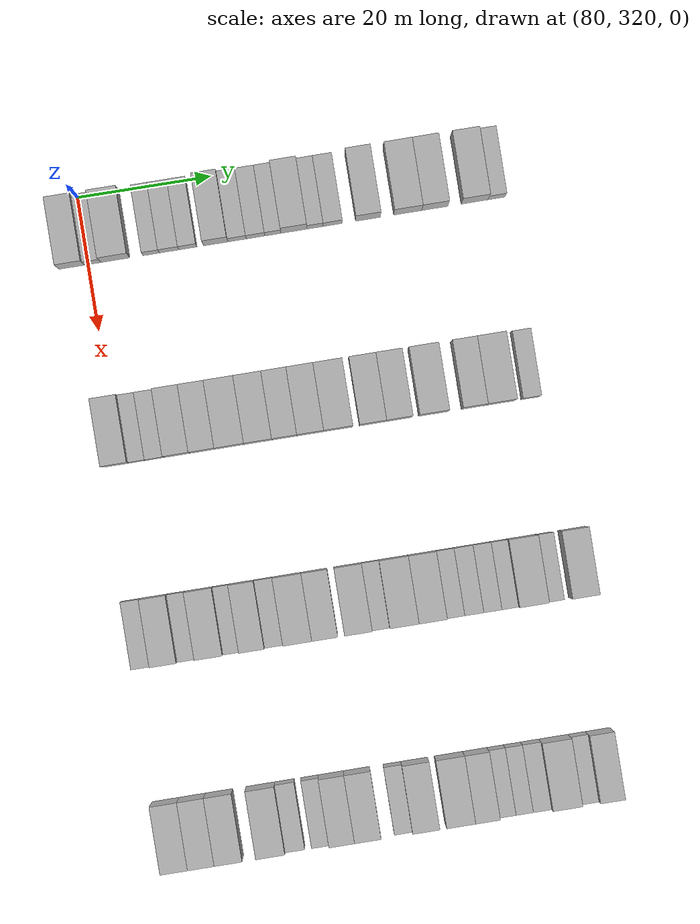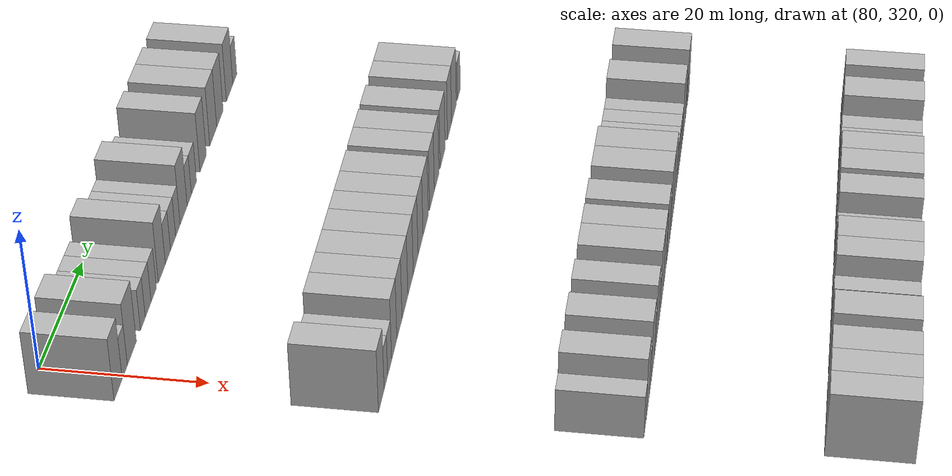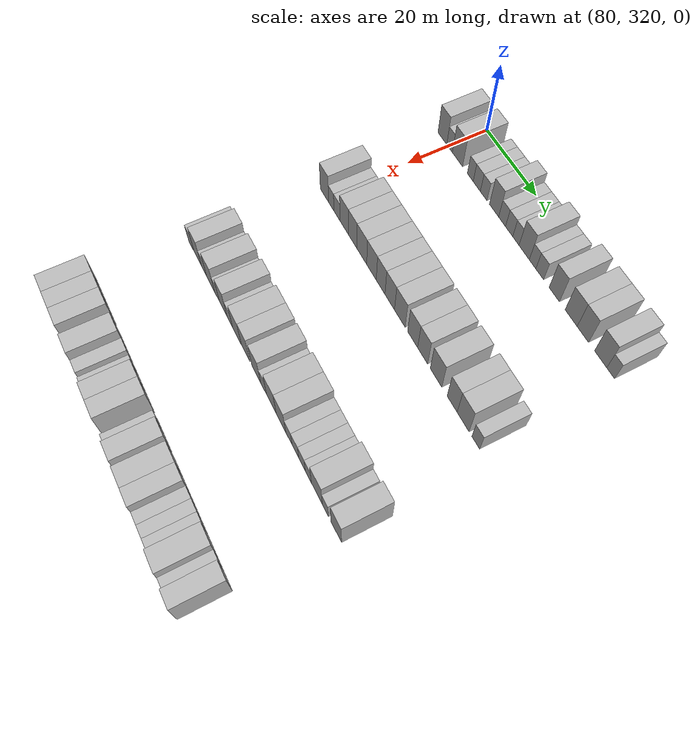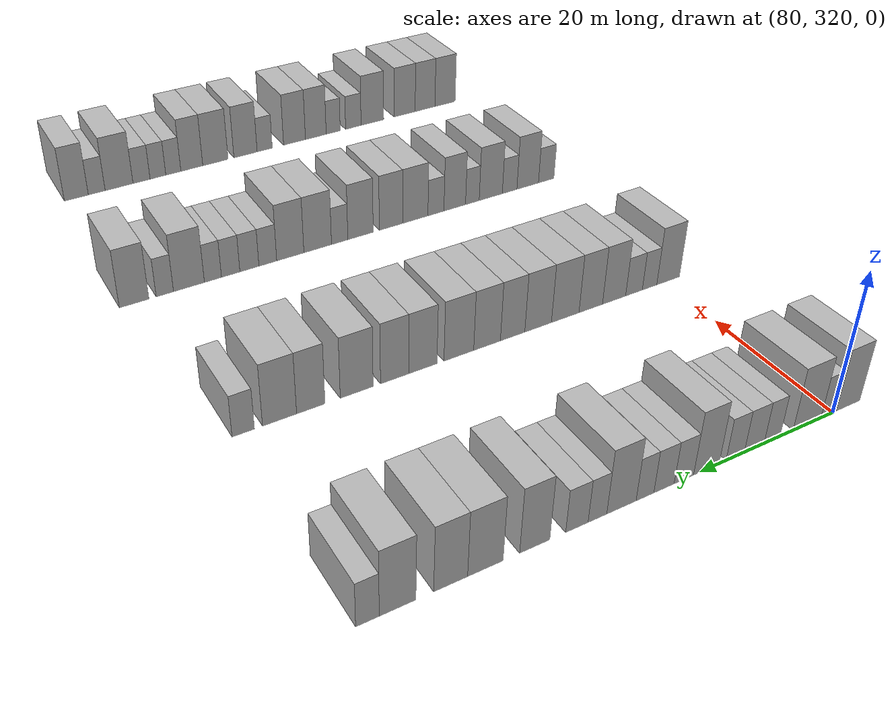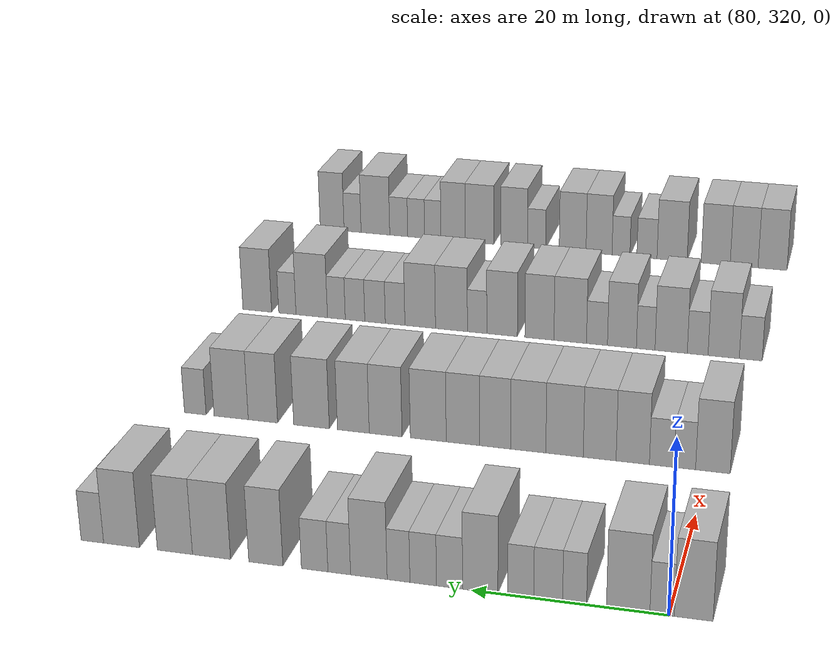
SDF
<sdf version="1.6">
 <world name="default">
  <model name="building_656">
   <static>1</static>
   <pose>85.0000 317.5295 0 0.000000 0.000000 0.000000</pose>
   <link name="link">
    <pose>0 0 4.50 0 0 0</pose>
    <collision name="collision"><geometry><box><size>10.0000 3.8385 9.0000</size></box></geometry></collision>
    <visual name="visual">
     <cast_shadows>0</cast_shadows>
     <geometry><box><size>10.0000 3.8385 9.0000</size></box></geometry>
     <material>
      <script>
       <uri>model://HANNAS_wall/materials/scripts</uri>
       <uri>model://HANNAS_wall/materials/textures</uri>
       <name>vrc/HANNAS_wall</name>
      </script>
     </material>
    </visual>
   </link>
  </model>
  <model name="building_657">
   <static>1</static>
   <pose>85.0000 320.6643 0 0.000000 0.000000 0.000000</pose>
   <link name="link">
    <pose>0 0 3.00 0 0 0</pose>
    <collision name="collision"><geometry><box><size>10.0000 2.4312 6.0000</size></box></geometry></collision>
    <visual name="visual">
     <cast_shadows>0</cast_shadows>
     <geometry><box><size>10.0000 2.4312 6.0000</size></box></geometry>
     <material>
      <script>
       <uri>model://HANNAS_wall/materials/scripts</uri>
       <uri>model://HANNAS_wall/materials/textures</uri>
       <name>vrc/HANNAS_wall</name>
      </script>
     </material>
    </visual>
   </link>
  </model>
  <model name="building_658">
   <static>1</static>
   <pose>85.0000 324.0612 0 0.000000 0.000000 0.000000</pose>
   <link name="link">
    <pose>0 0 4.50 0 0 0</pose>
    <collision name="collision"><geometry><box><size>10.0000 4.3625 9.0000</size></box></geometry></collision>
    <visual name="visual">
     <cast_shadows>0</cast_shadows>
     <geometry><box><size>10.0000 4.3625 9.0000</size></box></geometry>
     <material>
      <script>
       <uri>model://HANNAS_wall/materials/scripts</uri>
       <uri>model://HANNAS_wall/materials/textures</uri>
       <name>vrc/HANNAS_wall</name>
      </script>
     </material>
    </visual>
   </link>
  </model>
  <model name="building_659">
   <static>1</static>
   <pose>85.0000 329.4591 0 0.000000 0.000000 0.000000</pose>
   <link name="link">
    <pose>0 0 3.00 0 0 0</pose>
    <collision name="collision"><geometry><box><size>10.0000 2.4334 6.0000</size></box></geometry></collision>
    <visual name="visual">
     <cast_shadows>0</cast_shadows>
     <geometry><box><size>10.0000 2.4334 6.0000</size></box></geometry>
     <material>
      <script>
       <uri>model://HANNAS_wall/materials/scripts</uri>
       <uri>model://HANNAS_wall/materials/textures</uri>
       <name>vrc/HANNAS_wall</name>
      </script>
     </material>
    </visual>
   </link>
  </model>
  <model name="building_660">
   <static>1</static>
   <pose>85.0000 332.1476 0 0.000000 0.000000 0.000000</pose>
   <link name="link">
    <pose>0 0 3.00 0 0 0</pose>
    <collision name="collision"><geometry><box><size>10.0000 2.9434 6.0000</size></box></geometry></collision>
    <visual name="visual">
     <cast_shadows>0</cast_shadows>
     <geometry><box><size>10.0000 2.9434 6.0000</size></box></geometry>
     <material>
      <script>
       <uri>model://HANNAS_wall/materials/scripts</uri>
       <uri>model://HANNAS_wall/materials/textures</uri>
       <name>vrc/HANNAS_wall</name>
      </script>
     </material>
    </visual>
   </link>
  </model>
  <model name="building_661">
   <static>1</static>
   <pose>85.0000 334.9630 0 0.000000 0.000000 0.000000</pose>
   <link name="link">
    <pose>0 0 3.00 0 0 0</pose>
    <collision name="collision"><geometry><box><size>10.0000 2.6874 6.0000</size></box></geometry></collision>
    <visual name="visual">
     <cast_shadows>0</cast_shadows>
     <geometry><box><size>10.0000 2.6874 6.0000</size></box></geometry>
     <material>
      <script>
       <uri>model://HANNAS_wall/materials/scripts</uri>
       <uri>model://HANNAS_wall/materials/textures</uri>
       <name>vrc/HANNAS_wall</name>
      </script>
     </material>
    </visual>
   </link>
  </model>
  <model name="building_662">
   <static>1</static>
   <pose>85.0000 339.1381 0 0.000000 0.000000 0.000000</pose>
   <link name="link">
    <pose>0 0 4.50 0 0 0</pose>
    <collision name="collision"><geometry><box><size>10.0000 3.6628 9.0000</size></box></geometry></collision>
    <visual name="visual">
     <cast_shadows>0</cast_shadows>
     <geometry><box><size>10.0000 3.6628 9.0000</size></box></geometry>
     <material>
      <script>
       <uri>model://HANNAS_wall/materials/scripts</uri>
       <uri>model://HANNAS_wall/materials/textures</uri>
       <name>vrc/HANNAS_wall</name>
      </script>
     </material>
    </visual>
   </link>
  </model>
  <model name="building_663">
   <static>1</static>
   <pose>85.0000 342.3312 0 0.000000 0.000000 0.000000</pose>
   <link name="link">
    <pose>0 0 3.00 0 0 0</pose>
    <collision name="collision"><geometry><box><size>10.0000 2.7235 6.0000</size></box></geometry></collision>
    <visual name="visual">
     <cast_shadows>0</cast_shadows>
     <geometry><box><size>10.0000 2.7235 6.0000</size></box></geometry>
     <material>
      <script>
       <uri>model://HANNAS_wall/materials/scripts</uri>
       <uri>model://HANNAS_wall/materials/textures</uri>
       <name>vrc/HANNAS_wall</name>
      </script>
     </material>
    </visual>
   </link>
  </model>
  <model name="building_664">
   <static>1</static>
   <pose>85.0000 345.0891 0 0.000000 0.000000 0.000000</pose>
   <link name="link">
    <pose>0 0 3.00 0 0 0</pose>
    <collision name="collision"><geometry><box><size>10.0000 2.7923 6.0000</size></box></geometry></collision>
    <visual name="visual">
     <cast_shadows>0</cast_shadows>
     <geometry><box><size>10.0000 2.7923 6.0000</size></box></geometry>
     <material>
      <script>
       <uri>model://HANNAS_wall/materials/scripts</uri>
       <uri>model://HANNAS_wall/materials/textures</uri>
       <name>vrc/HANNAS_wall</name>
      </script>
     </material>
    </visual>
   </link>
  </model>
  <model name="building_665">
   <static>1</static>
   <pose>85.0000 347.6860 0 0.000000 0.000000 0.000000</pose>
   <link name="link">
    <pose>0 0 3.00 0 0 0</pose>
    <collision name="collision"><geometry><box><size>10.0000 2.4015 6.0000</size></box></geometry></collision>
    <visual name="visual">
     <cast_shadows>0</cast_shadows>
     <geometry><box><size>10.0000 2.4015 6.0000</size></box></geometry>
     <material>
      <script>
       <uri>model://HANNAS_wall/materials/scripts</uri>
       <uri>model://HANNAS_wall/materials/textures</uri>
       <name>vrc/HANNAS_wall</name>
      </script>
     </material>
    </visual>
   </link>
  </model>
  <model name="building_666">
   <static>1</static>
   <pose>85.0000 350.8327 0 0.000000 0.000000 0.000000</pose>
   <link name="link">
    <pose>0 0 4.50 0 0 0</pose>
    <collision name="collision"><geometry><box><size>10.0000 3.8920 9.0000</size></box></geometry></collision>
    <visual name="visual">
     <cast_shadows>0</cast_shadows>
     <geometry><box><size>10.0000 3.8920 9.0000</size></box></geometry>
     <material>
      <script>
       <uri>model://HANNAS_wall/materials/scripts</uri>
       <uri>model://HANNAS_wall/materials/textures</uri>
       <name>vrc/HANNAS_wall</name>
      </script>
     </material>
    </visual>
   </link>
  </model>
  <model name="building_667">
   <static>1</static>
   <pose>85.0000 353.9919 0 0.000000 0.000000 0.000000</pose>
   <link name="link">
    <pose>0 0 3.00 0 0 0</pose>
    <collision name="collision"><geometry><box><size>10.0000 2.4262 6.0000</size></box></geometry></collision>
    <visual name="visual">
     <cast_shadows>0</cast_shadows>
     <geometry><box><size>10.0000 2.4262 6.0000</size></box></geometry>
     <material>
      <script>
       <uri>model://HANNAS_wall/materials/scripts</uri>
       <uri>model://HANNAS_wall/materials/textures</uri>
       <name>vrc/HANNAS_wall</name>
      </script>
     </material>
    </visual>
   </link>
  </model>
  <model name="building_668">
   <static>1</static>
   <pose>85.0000 356.6333 0 0.000000 0.000000 0.000000</pose>
   <link name="link">
    <pose>0 0 3.00 0 0 0</pose>
    <collision name="collision"><geometry><box><size>10.0000 2.8567 6.0000</size></box></geometry></collision>
    <visual name="visual">
     <cast_shadows>0</cast_shadows>
     <geometry><box><size>10.0000 2.8567 6.0000</size></box></geometry>
     <material>
      <script>
       <uri>model://HANNAS_wall/materials/scripts</uri>
       <uri>model://HANNAS_wall/materials/textures</uri>
       <name>vrc/HANNAS_wall</name>
      </script>
     </material>
    </visual>
   </link>
  </model>
  <model name="building_669">
   <static>1</static>
   <pose>85.0000 361.9188 0 0.000000 0.000000 0.000000</pose>
   <link name="link">
    <pose>0 0 4.50 0 0 0</pose>
    <collision name="collision"><geometry><box><size>10.0000 3.7143 9.0000</size></box></geometry></collision>
    <visual name="visual">
     <cast_shadows>0</cast_shadows>
     <geometry><box><size>10.0000 3.7143 9.0000</size></box></geometry>
     <material>
      <script>
       <uri>model://HANNAS_wall/materials/scripts</uri>
       <uri>model://HANNAS_wall/materials/textures</uri>
       <name>vrc/HANNAS_wall</name>
      </script>
     </material>
    </visual>
   </link>
  </model>
  <model name="building_670">
   <static>1</static>
   <pose>85.0000 367.8730 0 0.000000 0.000000 0.000000</pose>
   <link name="link">
    <pose>0 0 4.50 0 0 0</pose>
    <collision name="collision"><geometry><box><size>10.0000 4.1942 9.0000</size></box></geometry></collision>
    <visual name="visual">
     <cast_shadows>0</cast_shadows>
     <geometry><box><size>10.0000 4.1942 9.0000</size></box></geometry>
     <material>
      <script>
       <uri>model://HANNAS_wall/materials/scripts</uri>
       <uri>model://HANNAS_wall/materials/textures</uri>
       <name>vrc/HANNAS_wall</name>
      </script>
     </material>
    </visual>
   </link>
  </model>
  <model name="building_671">
   <static>1</static>
   <pose>85.0000 371.9230 0 0.000000 0.000000 0.000000</pose>
   <link name="link">
    <pose>0 0 4.50 0 0 0</pose>
    <collision name="collision"><geometry><box><size>10.0000 3.9056 9.0000</size></box></geometry></collision>
    <visual name="visual">
     <cast_shadows>0</cast_shadows>
     <geometry><box><size>10.0000 3.9056 9.0000</size></box></geometry>
     <material>
      <script>
       <uri>model://HANNAS_wall/materials/scripts</uri>
       <uri>model://HANNAS_wall/materials/textures</uri>
       <name>vrc/HANNAS_wall</name>
      </script>
     </material>
    </visual>
   </link>
  </model>
  <model name="building_672">
   <static>1</static>
   <pose>85.0000 377.8960 0 0.000000 0.000000 0.000000</pose>
   <link name="link">
    <pose>0 0 4.50 0 0 0</pose>
    <collision name="collision"><geometry><box><size>10.0000 4.0404 9.0000</size></box></geometry></collision>
    <visual name="visual">
     <cast_shadows>0</cast_shadows>
     <geometry><box><size>10.0000 4.0404 9.0000</size></box></geometry>
     <material>
      <script>
       <uri>model://HANNAS_wall/materials/scripts</uri>
       <uri>model://HANNAS_wall/materials/textures</uri>
       <name>vrc/HANNAS_wall</name>
      </script>
     </material>
    </visual>
   </link>
  </model>
  <model name="building_673">
   <static>1</static>
   <pose>85.0000 381.1887 0 0.000000 0.000000 0.000000</pose>
   <link name="link">
    <pose>0 0 3.00 0 0 0</pose>
    <collision name="collision"><geometry><box><size>10.0000 2.5450 6.0000</size></box></geometry></collision>
    <visual name="visual">
     <cast_shadows>0</cast_shadows>
     <geometry><box><size>10.0000 2.5450 6.0000</size></box></geometry>
     <material>
      <script>
       <uri>model://HANNAS_wall/materials/scripts</uri>
       <uri>model://HANNAS_wall/materials/textures</uri>
       <name>vrc/HANNAS_wall</name>
      </script>
     </material>
    </visual>
   </link>
  </model>
  <model name="building_889">
   <static>1</static>
   <pose>115.0000 319.4348 0 0.000000 0.000000 0.000000</pose>
   <link name="link">
    <pose>0 0 4.50 0 0 0</pose>
    <collision name="collision"><geometry><box><size>10.0000 3.9116 9.0000</size></box></geometry></collision>
    <visual name="visual">
     <cast_shadows>0</cast_shadows>
     <geometry><box><size>10.0000 3.9116 9.0000</size></box></geometry>
     <material>
      <script>
       <uri>model://HANNAS_wall/materials/scripts</uri>
       <uri>model://HANNAS_wall/materials/textures</uri>
       <name>vrc/HANNAS_wall</name>
      </script>
     </material>
    </visual>
   </link>
  </model>
  <model name="building_890">
   <static>1</static>
   <pose>115.0000 322.6186 0 0.000000 0.000000 0.000000</pose>
   <link name="link">
    <pose>0 0 3.00 0 0 0</pose>
    <collision name="collision"><geometry><box><size>10.0000 2.4560 6.0000</size></box></geometry></collision>
    <visual name="visual">
     <cast_shadows>0</cast_shadows>
     <geometry><box><size>10.0000 2.4560 6.0000</size></box></geometry>
     <material>
      <script>
       <uri>model://HANNAS_wall/materials/scripts</uri>
       <uri>model://HANNAS_wall/materials/textures</uri>
       <name>vrc/HANNAS_wall</name>
      </script>
     </material>
    </visual>
   </link>
  </model>
  <model name="building_891">
   <static>1</static>
   <pose>115.0000 325.2488 0 0.000000 0.000000 0.000000</pose>
   <link name="link">
    <pose>0 0 3.00 0 0 0</pose>
    <collision name="collision"><geometry><box><size>10.0000 2.8042 6.0000</size></box></geometry></collision>
    <visual name="visual">
     <cast_shadows>0</cast_shadows>
     <geometry><box><size>10.0000 2.8042 6.0000</size></box></geometry>
     <material>
      <script>
       <uri>model://HANNAS_wall/materials/scripts</uri>
       <uri>model://HANNAS_wall/materials/textures</uri>
       <name>vrc/HANNAS_wall</name>
      </script>
     </material>
    </visual>
   </link>
  </model>
  <model name="building_892">
   <static>1</static>
   <pose>115.0000 328.5654 0 0.000000 0.000000 0.000000</pose>
   <link name="link">
    <pose>0 0 4.50 0 0 0</pose>
    <collision name="collision"><geometry><box><size>10.0000 3.8291 9.0000</size></box></geometry></collision>
    <visual name="visual">
     <cast_shadows>0</cast_shadows>
     <geometry><box><size>10.0000 3.8291 9.0000</size></box></geometry>
     <material>
      <script>
       <uri>model://HANNAS_wall/materials/scripts</uri>
       <uri>model://HANNAS_wall/materials/textures</uri>
       <name>vrc/HANNAS_wall</name>
      </script>
     </material>
    </visual>
   </link>
  </model>
  <model name="building_893">
   <static>1</static>
   <pose>115.0000 332.3822 0 0.000000 0.000000 0.000000</pose>
   <link name="link">
    <pose>0 0 4.50 0 0 0</pose>
    <collision name="collision"><geometry><box><size>10.0000 3.8044 9.0000</size></box></geometry></collision>
    <visual name="visual">
     <cast_shadows>0</cast_shadows>
     <geometry><box><size>10.0000 3.8044 9.0000</size></box></geometry>
     <material>
      <script>
       <uri>model://HANNAS_wall/materials/scripts</uri>
       <uri>model://HANNAS_wall/materials/textures</uri>
       <name>vrc/HANNAS_wall</name>
      </script>
     </material>
    </visual>
   </link>
  </model>
  <model name="building_894">
   <static>1</static>
   <pose>115.0000 336.4641 0 0.000000 0.000000 0.000000</pose>
   <link name="link">
    <pose>0 0 4.50 0 0 0</pose>
    <collision name="collision"><geometry><box><size>10.0000 4.3595 9.0000</size></box></geometry></collision>
    <visual name="visual">
     <cast_shadows>0</cast_shadows>
     <geometry><box><size>10.0000 4.3595 9.0000</size></box></geometry>
     <material>
      <script>
       <uri>model://HANNAS_wall/materials/scripts</uri>
       <uri>model://HANNAS_wall/materials/textures</uri>
       <name>vrc/HANNAS_wall</name>
      </script>
     </material>
    </visual>
   </link>
  </model>
  <model name="building_895">
   <static>1</static>
   <pose>115.0000 340.7091 0 0.000000 0.000000 0.000000</pose>
   <link name="link">
    <pose>0 0 4.50 0 0 0</pose>
    <collision name="collision"><geometry><box><size>10.0000 4.1305 9.0000</size></box></geometry></collision>
    <visual name="visual">
     <cast_shadows>0</cast_shadows>
     <geometry><box><size>10.0000 4.1305 9.0000</size></box></geometry>
     <material>
      <script>
       <uri>model://HANNAS_wall/materials/scripts</uri>
       <uri>model://HANNAS_wall/materials/textures</uri>
       <name>vrc/HANNAS_wall</name>
      </script>
     </material>
    </visual>
   </link>
  </model>
  <model name="building_896">
   <static>1</static>
   <pose>115.0000 344.6231 0 0.000000 0.000000 0.000000</pose>
   <link name="link">
    <pose>0 0 4.50 0 0 0</pose>
    <collision name="collision"><geometry><box><size>10.0000 3.6976 9.0000</size></box></geometry></collision>
    <visual name="visual">
     <cast_shadows>0</cast_shadows>
     <geometry><box><size>10.0000 3.6976 9.0000</size></box></geometry>
     <material>
      <script>
       <uri>model://HANNAS_wall/materials/scripts</uri>
       <uri>model://HANNAS_wall/materials/textures</uri>
       <name>vrc/HANNAS_wall</name>
      </script>
     </material>
    </visual>
   </link>
  </model>
  <model name="building_897">
   <static>1</static>
   <pose>115.0000 348.4558 0 0.000000 0.000000 0.000000</pose>
   <link name="link">
    <pose>0 0 4.50 0 0 0</pose>
    <collision name="collision"><geometry><box><size>10.0000 3.9677 9.0000</size></box></geometry></collision>
    <visual name="visual">
     <cast_shadows>0</cast_shadows>
     <geometry><box><size>10.0000 3.9677 9.0000</size></box></geometry>
     <material>
      <script>
       <uri>model://HANNAS_wall/materials/scripts</uri>
       <uri>model://HANNAS_wall/materials/textures</uri>
       <name>vrc/HANNAS_wall</name>
      </script>
     </material>
    </visual>
   </link>
  </model>
  <model name="building_898">
   <static>1</static>
   <pose>115.0000 352.5982 0 0.000000 0.000000 0.000000</pose>
   <link name="link">
    <pose>0 0 4.50 0 0 0</pose>
    <collision name="collision"><geometry><box><size>10.0000 4.3171 9.0000</size></box></geometry></collision>
    <visual name="visual">
     <cast_shadows>0</cast_shadows>
     <geometry><box><size>10.0000 4.3171 9.0000</size></box></geometry>
     <material>
      <script>
       <uri>model://HANNAS_wall/materials/scripts</uri>
       <uri>model://HANNAS_wall/materials/textures</uri>
       <name>vrc/HANNAS_wall</name>
      </script>
     </material>
    </visual>
   </link>
  </model>
  <model name="building_899">
   <static>1</static>
   <pose>115.0000 357.7504 0 0.000000 0.000000 0.000000</pose>
   <link name="link">
    <pose>0 0 4.50 0 0 0</pose>
    <collision name="collision"><geometry><box><size>10.0000 3.9874 9.0000</size></box></geometry></collision>
    <visual name="visual">
     <cast_shadows>0</cast_shadows>
     <geometry><box><size>10.0000 3.9874 9.0000</size></box></geometry>
     <material>
      <script>
       <uri>model://HANNAS_wall/materials/scripts</uri>
       <uri>model://HANNAS_wall/materials/textures</uri>
       <name>vrc/HANNAS_wall</name>
      </script>
     </material>
    </visual>
   </link>
  </model>
  <model name="building_900">
   <static>1</static>
   <pose>115.0000 361.6867 0 0.000000 0.000000 0.000000</pose>
   <link name="link">
    <pose>0 0 4.50 0 0 0</pose>
    <collision name="collision"><geometry><box><size>10.0000 3.8852 9.0000</size></box></geometry></collision>
    <visual name="visual">
     <cast_shadows>0</cast_shadows>
     <geometry><box><size>10.0000 3.8852 9.0000</size></box></geometry>
     <material>
      <script>
       <uri>model://HANNAS_wall/materials/scripts</uri>
       <uri>model://HANNAS_wall/materials/textures</uri>
       <name>vrc/HANNAS_wall</name>
      </script>
     </material>
    </visual>
   </link>
  </model>
  <model name="building_901">
   <static>1</static>
   <pose>115.0000 366.8284 0 0.000000 0.000000 0.000000</pose>
   <link name="link">
    <pose>0 0 4.50 0 0 0</pose>
    <collision name="collision"><geometry><box><size>10.0000 4.3984 9.0000</size></box></geometry></collision>
    <visual name="visual">
     <cast_shadows>0</cast_shadows>
     <geometry><box><size>10.0000 4.3984 9.0000</size></box></geometry>
     <material>
      <script>
       <uri>model://HANNAS_wall/materials/scripts</uri>
       <uri>model://HANNAS_wall/materials/textures</uri>
       <name>vrc/HANNAS_wall</name>
      </script>
     </material>
    </visual>
   </link>
  </model>
  <model name="building_902">
   <static>1</static>
   <pose>115.0000 372.8615 0 0.000000 0.000000 0.000000</pose>
   <link name="link">
    <pose>0 0 4.50 0 0 0</pose>
    <collision name="collision"><geometry><box><size>10.0000 3.6678 9.0000</size></box></geometry></collision>
    <visual name="visual">
     <cast_shadows>0</cast_shadows>
     <geometry><box><size>10.0000 3.6678 9.0000</size></box></geometry>
     <material>
      <script>
       <uri>model://HANNAS_wall/materials/scripts</uri>
       <uri>model://HANNAS_wall/materials/textures</uri>
       <name>vrc/HANNAS_wall</name>
      </script>
     </material>
    </visual>
   </link>
  </model>
  <model name="building_903">
   <static>1</static>
   <pose>115.0000 376.8481 0 0.000000 0.000000 0.000000</pose>
   <link name="link">
    <pose>0 0 4.50 0 0 0</pose>
    <collision name="collision"><geometry><box><size>10.0000 4.3054 9.0000</size></box></geometry></collision>
    <visual name="visual">
     <cast_shadows>0</cast_shadows>
     <geometry><box><size>10.0000 4.3054 9.0000</size></box></geometry>
     <material>
      <script>
       <uri>model://HANNAS_wall/materials/scripts</uri>
       <uri>model://HANNAS_wall/materials/textures</uri>
       <name>vrc/HANNAS_wall</name>
      </script>
     </material>
    </visual>
   </link>
  </model>
  <model name="building_904">
   <static>1</static>
   <pose>115.0000 381.3746 0 0.000000 0.000000 0.000000</pose>
   <link name="link">
    <pose>0 0 3.00 0 0 0</pose>
    <collision name="collision"><geometry><box><size>10.0000 2.7475 6.0000</size></box></geometry></collision>
    <visual name="visual">
     <cast_shadows>0</cast_shadows>
     <geometry><box><size>10.0000 2.7475 6.0000</size></box></geometry>
     <material>
      <script>
       <uri>model://HANNAS_wall/materials/scripts</uri>
       <uri>model://HANNAS_wall/materials/textures</uri>
       <name>vrc/HANNAS_wall</name>
      </script>
     </material>
    </visual>
   </link>
  </model>
  <model name="building_1105">
   <static>1</static>
   <pose>145.0000 318.4346 0 0.000000 0.000000 0.000000</pose>
   <link name="link">
    <pose>0 0 3.00 0 0 0</pose>
    <collision name="collision"><geometry><box><size>10.0000 2.8904 6.0000</size></box></geometry></collision>
    <visual name="visual">
     <cast_shadows>0</cast_shadows>
     <geometry><box><size>10.0000 2.8904 6.0000</size></box></geometry>
     <material>
      <script>
       <uri>model://HANNAS_wall/materials/scripts</uri>
       <uri>model://HANNAS_wall/materials/textures</uri>
       <name>vrc/HANNAS_wall</name>
      </script>
     </material>
    </visual>
   </link>
  </model>
  <model name="building_1106">
   <static>1</static>
   <pose>145.0000 321.8645 0 0.000000 0.000000 0.000000</pose>
   <link name="link">
    <pose>0 0 4.50 0 0 0</pose>
    <collision name="collision"><geometry><box><size>10.0000 3.9692 9.0000</size></box></geometry></collision>
    <visual name="visual">
     <cast_shadows>0</cast_shadows>
     <geometry><box><size>10.0000 3.9692 9.0000</size></box></geometry>
     <material>
      <script>
       <uri>model://HANNAS_wall/materials/scripts</uri>
       <uri>model://HANNAS_wall/materials/textures</uri>
       <name>vrc/HANNAS_wall</name>
      </script>
     </material>
    </visual>
   </link>
  </model>
  <model name="building_1107">
   <static>1</static>
   <pose>145.0000 325.1760 0 0.000000 0.000000 0.000000</pose>
   <link name="link">
    <pose>0 0 3.00 0 0 0</pose>
    <collision name="collision"><geometry><box><size>10.0000 2.6539 6.0000</size></box></geometry></collision>
    <visual name="visual">
     <cast_shadows>0</cast_shadows>
     <geometry><box><size>10.0000 2.6539 6.0000</size></box></geometry>
     <material>
      <script>
       <uri>model://HANNAS_wall/materials/scripts</uri>
       <uri>model://HANNAS_wall/materials/textures</uri>
       <name>vrc/HANNAS_wall</name>
      </script>
     </material>
    </visual>
   </link>
  </model>
  <model name="building_1108">
   <static>1</static>
   <pose>145.0000 328.5757 0 0.000000 0.000000 0.000000</pose>
   <link name="link">
    <pose>0 0 4.50 0 0 0</pose>
    <collision name="collision"><geometry><box><size>10.0000 4.1455 9.0000</size></box></geometry></collision>
    <visual name="visual">
     <cast_shadows>0</cast_shadows>
     <geometry><box><size>10.0000 4.1455 9.0000</size></box></geometry>
     <material>
      <script>
       <uri>model://HANNAS_wall/materials/scripts</uri>
       <uri>model://HANNAS_wall/materials/textures</uri>
       <name>vrc/HANNAS_wall</name>
      </script>
     </material>
    </visual>
   </link>
  </model>
  <model name="building_1109">
   <static>1</static>
   <pose>145.0000 331.8518 0 0.000000 0.000000 0.000000</pose>
   <link name="link">
    <pose>0 0 3.00 0 0 0</pose>
    <collision name="collision"><geometry><box><size>10.0000 2.4067 6.0000</size></box></geometry></collision>
    <visual name="visual">
     <cast_shadows>0</cast_shadows>
     <geometry><box><size>10.0000 2.4067 6.0000</size></box></geometry>
     <material>
      <script>
       <uri>model://HANNAS_wall/materials/scripts</uri>
       <uri>model://HANNAS_wall/materials/textures</uri>
       <name>vrc/HANNAS_wall</name>
      </script>
     </material>
    </visual>
   </link>
  </model>
  <model name="building_1110">
   <static>1</static>
   <pose>145.0000 334.9343 0 0.000000 0.000000 0.000000</pose>
   <link name="link">
    <pose>0 0 4.50 0 0 0</pose>
    <collision name="collision"><geometry><box><size>10.0000 3.7583 9.0000</size></box></geometry></collision>
    <visual name="visual">
     <cast_shadows>0</cast_shadows>
     <geometry><box><size>10.0000 3.7583 9.0000</size></box></geometry>
     <material>
      <script>
       <uri>model://HANNAS_wall/materials/scripts</uri>
       <uri>model://HANNAS_wall/materials/textures</uri>
       <name>vrc/HANNAS_wall</name>
      </script>
     </material>
    </visual>
   </link>
  </model>
  <model name="building_1111">
   <static>1</static>
   <pose>145.0000 338.1828 0 0.000000 0.000000 0.000000</pose>
   <link name="link">
    <pose>0 0 3.00 0 0 0</pose>
    <collision name="collision"><geometry><box><size>10.0000 2.7387 6.0000</size></box></geometry></collision>
    <visual name="visual">
     <cast_shadows>0</cast_shadows>
     <geometry><box><size>10.0000 2.7387 6.0000</size></box></geometry>
     <material>
      <script>
       <uri>model://HANNAS_wall/materials/scripts</uri>
       <uri>model://HANNAS_wall/materials/textures</uri>
       <name>vrc/HANNAS_wall</name>
      </script>
     </material>
    </visual>
   </link>
  </model>
  <model name="building_1112">
   <static>1</static>
   <pose>145.0000 341.6887 0 0.000000 0.000000 0.000000</pose>
   <link name="link">
    <pose>0 0 4.50 0 0 0</pose>
    <collision name="collision"><geometry><box><size>10.0000 4.2732 9.0000</size></box></geometry></collision>
    <visual name="visual">
     <cast_shadows>0</cast_shadows>
     <geometry><box><size>10.0000 4.2732 9.0000</size></box></geometry>
     <material>
      <script>
       <uri>model://HANNAS_wall/materials/scripts</uri>
       <uri>model://HANNAS_wall/materials/textures</uri>
       <name>vrc/HANNAS_wall</name>
      </script>
     </material>
    </visual>
   </link>
  </model>
  <model name="building_1113">
   <static>1</static>
   <pose>145.0000 345.7477 0 0.000000 0.000000 0.000000</pose>
   <link name="link">
    <pose>0 0 4.50 0 0 0</pose>
    <collision name="collision"><geometry><box><size>10.0000 3.8448 9.0000</size></box></geometry></collision>
    <visual name="visual">
     <cast_shadows>0</cast_shadows>
     <geometry><box><size>10.0000 3.8448 9.0000</size></box></geometry>
     <material>
      <script>
       <uri>model://HANNAS_wall/materials/scripts</uri>
       <uri>model://HANNAS_wall/materials/textures</uri>
       <name>vrc/HANNAS_wall</name>
      </script>
     </material>
    </visual>
   </link>
  </model>
  <model name="building_1114">
   <static>1</static>
   <pose>145.0000 350.7122 0 0.000000 0.000000 0.000000</pose>
   <link name="link">
    <pose>0 0 4.50 0 0 0</pose>
    <collision name="collision"><geometry><box><size>10.0000 4.0841 9.0000</size></box></geometry></collision>
    <visual name="visual">
     <cast_shadows>0</cast_shadows>
     <geometry><box><size>10.0000 4.0841 9.0000</size></box></geometry>
     <material>
      <script>
       <uri>model://HANNAS_wall/materials/scripts</uri>
       <uri>model://HANNAS_wall/materials/textures</uri>
       <name>vrc/HANNAS_wall</name>
      </script>
     </material>
    </visual>
   </link>
  </model>
  <model name="building_1115">
   <static>1</static>
   <pose>145.0000 354.0508 0 0.000000 0.000000 0.000000</pose>
   <link name="link">
    <pose>0 0 3.00 0 0 0</pose>
    <collision name="collision"><geometry><box><size>10.0000 2.5931 6.0000</size></box></geometry></collision>
    <visual name="visual">
     <cast_shadows>0</cast_shadows>
     <geometry><box><size>10.0000 2.5931 6.0000</size></box></geometry>
     <material>
      <script>
       <uri>model://HANNAS_wall/materials/scripts</uri>
       <uri>model://HANNAS_wall/materials/textures</uri>
       <name>vrc/HANNAS_wall</name>
      </script>
     </material>
    </visual>
   </link>
  </model>
  <model name="building_1116">
   <static>1</static>
   <pose>145.0000 357.5026 0 0.000000 0.000000 0.000000</pose>
   <link name="link">
    <pose>0 0 4.50 0 0 0</pose>
    <collision name="collision"><geometry><box><size>10.0000 4.3105 9.0000</size></box></geometry></collision>
    <visual name="visual">
     <cast_shadows>0</cast_shadows>
     <geometry><box><size>10.0000 4.3105 9.0000</size></box></geometry>
     <material>
      <script>
       <uri>model://HANNAS_wall/materials/scripts</uri>
       <uri>model://HANNAS_wall/materials/textures</uri>
       <name>vrc/HANNAS_wall</name>
      </script>
     </material>
    </visual>
   </link>
  </model>
  <model name="building_1117">
   <static>1</static>
   <pose>145.0000 361.7345 0 0.000000 0.000000 0.000000</pose>
   <link name="link">
    <pose>0 0 4.50 0 0 0</pose>
    <collision name="collision"><geometry><box><size>10.0000 4.1534 9.0000</size></box></geometry></collision>
    <visual name="visual">
     <cast_shadows>0</cast_shadows>
     <geometry><box><size>10.0000 4.1534 9.0000</size></box></geometry>
     <material>
      <script>
       <uri>model://HANNAS_wall/materials/scripts</uri>
       <uri>model://HANNAS_wall/materials/textures</uri>
       <name>vrc/HANNAS_wall</name>
      </script>
     </material>
    </visual>
   </link>
  </model>
  <model name="building_1118">
   <static>1</static>
   <pose>145.0000 365.1513 0 0.000000 0.000000 0.000000</pose>
   <link name="link">
    <pose>0 0 3.00 0 0 0</pose>
    <collision name="collision"><geometry><box><size>10.0000 2.6801 6.0000</size></box></geometry></collision>
    <visual name="visual">
     <cast_shadows>0</cast_shadows>
     <geometry><box><size>10.0000 2.6801 6.0000</size></box></geometry>
     <material>
      <script>
       <uri>model://HANNAS_wall/materials/scripts</uri>
       <uri>model://HANNAS_wall/materials/textures</uri>
       <name>vrc/HANNAS_wall</name>
      </script>
     </material>
    </visual>
   </link>
  </model>
  <model name="building_1119">
   <static>1</static>
   <pose>145.0000 367.9007 0 0.000000 0.000000 0.000000</pose>
   <link name="link">
    <pose>0 0 3.00 0 0 0</pose>
    <collision name="collision"><geometry><box><size>10.0000 2.8189 6.0000</size></box></geometry></collision>
    <visual name="visual">
     <cast_shadows>0</cast_shadows>
     <geometry><box><size>10.0000 2.8189 6.0000</size></box></geometry>
     <material>
      <script>
       <uri>model://HANNAS_wall/materials/scripts</uri>
       <uri>model://HANNAS_wall/materials/textures</uri>
       <name>vrc/HANNAS_wall</name>
      </script>
     </material>
    </visual>
   </link>
  </model>
  <model name="building_1120">
   <static>1</static>
   <pose>145.0000 370.6539 0 0.000000 0.000000 0.000000</pose>
   <link name="link">
    <pose>0 0 3.00 0 0 0</pose>
    <collision name="collision"><geometry><box><size>10.0000 2.6875 6.0000</size></box></geometry></collision>
    <visual name="visual">
     <cast_shadows>0</cast_shadows>
     <geometry><box><size>10.0000 2.6875 6.0000</size></box></geometry>
     <material>
      <script>
       <uri>model://HANNAS_wall/materials/scripts</uri>
       <uri>model://HANNAS_wall/materials/textures</uri>
       <name>vrc/HANNAS_wall</name>
      </script>
     </material>
    </visual>
   </link>
  </model>
  <model name="building_1121">
   <static>1</static>
   <pose>145.0000 373.2320 0 0.000000 0.000000 0.000000</pose>
   <link name="link">
    <pose>0 0 3.00 0 0 0</pose>
    <collision name="collision"><geometry><box><size>10.0000 2.4687 6.0000</size></box></geometry></collision>
    <visual name="visual">
     <cast_shadows>0</cast_shadows>
     <geometry><box><size>10.0000 2.4687 6.0000</size></box></geometry>
     <material>
      <script>
       <uri>model://HANNAS_wall/materials/scripts</uri>
       <uri>model://HANNAS_wall/materials/textures</uri>
       <name>vrc/HANNAS_wall</name>
      </script>
     </material>
    </visual>
   </link>
  </model>
  <model name="building_1122">
   <static>1</static>
   <pose>145.0000 376.6567 0 0.000000 0.000000 0.000000</pose>
   <link name="link">
    <pose>0 0 4.50 0 0 0</pose>
    <collision name="collision"><geometry><box><size>10.0000 4.3807 9.0000</size></box></geometry></collision>
    <visual name="visual">
     <cast_shadows>0</cast_shadows>
     <geometry><box><size>10.0000 4.3807 9.0000</size></box></geometry>
     <material>
      <script>
       <uri>model://HANNAS_wall/materials/scripts</uri>
       <uri>model://HANNAS_wall/materials/textures</uri>
       <name>vrc/HANNAS_wall</name>
      </script>
     </material>
    </visual>
   </link>
  </model>
  <model name="building_1123">
   <static>1</static>
   <pose>145.0000 380.0545 0 0.000000 0.000000 0.000000</pose>
   <link name="link">
    <pose>0 0 3.00 0 0 0</pose>
    <collision name="collision"><geometry><box><size>10.0000 2.4149 6.0000</size></box></geometry></collision>
    <visual name="visual">
     <cast_shadows>0</cast_shadows>
     <geometry><box><size>10.0000 2.4149 6.0000</size></box></geometry>
     <material>
      <script>
       <uri>model://HANNAS_wall/materials/scripts</uri>
       <uri>model://HANNAS_wall/materials/textures</uri>
       <name>vrc/HANNAS_wall</name>
      </script>
     </material>
    </visual>
   </link>
  </model>
  <model name="building_1124">
   <static>1</static>
   <pose>145.0000 384.2846 0 0.000000 0.000000 0.000000</pose>
   <link name="link">
    <pose>0 0 4.50 0 0 0</pose>
    <collision name="collision"><geometry><box><size>10.0000 4.0453 9.0000</size></box></geometry></collision>
    <visual name="visual">
     <cast_shadows>0</cast_shadows>
     <geometry><box><size>10.0000 4.0453 9.0000</size></box></geometry>
     <material>
      <script>
       <uri>model://HANNAS_wall/materials/scripts</uri>
       <uri>model://HANNAS_wall/materials/textures</uri>
       <name>vrc/HANNAS_wall</name>
      </script>
     </material>
    </visual>
   </link>
  </model>
  <model name="building_1340">
   <static>1</static>
   <pose>175.0000 318.6399 0 0.000000 0.000000 0.000000</pose>
   <link name="link">
    <pose>0 0 4.50 0 0 0</pose>
    <collision name="collision"><geometry><box><size>10.0000 4.0521 9.0000</size></box></geometry></collision>
    <visual name="visual">
     <cast_shadows>0</cast_shadows>
     <geometry><box><size>10.0000 4.0521 9.0000</size></box></geometry>
     <material>
      <script>
       <uri>model://HANNAS_wall/materials/scripts</uri>
       <uri>model://HANNAS_wall/materials/textures</uri>
       <name>vrc/HANNAS_wall</name>
      </script>
     </material>
    </visual>
   </link>
  </model>
  <model name="building_1341">
   <static>1</static>
   <pose>175.0000 322.6284 0 0.000000 0.000000 0.000000</pose>
   <link name="link">
    <pose>0 0 4.50 0 0 0</pose>
    <collision name="collision"><geometry><box><size>10.0000 3.9248 9.0000</size></box></geometry></collision>
    <visual name="visual">
     <cast_shadows>0</cast_shadows>
     <geometry><box><size>10.0000 3.9248 9.0000</size></box></geometry>
     <material>
      <script>
       <uri>model://HANNAS_wall/materials/scripts</uri>
       <uri>model://HANNAS_wall/materials/textures</uri>
       <name>vrc/HANNAS_wall</name>
      </script>
     </material>
    </visual>
   </link>
  </model>
  <model name="building_1342">
   <static>1</static>
   <pose>175.0000 326.6461 0 0.000000 0.000000 0.000000</pose>
   <link name="link">
    <pose>0 0 4.50 0 0 0</pose>
    <collision name="collision"><geometry><box><size>10.0000 4.1107 9.0000</size></box></geometry></collision>
    <visual name="visual">
     <cast_shadows>0</cast_shadows>
     <geometry><box><size>10.0000 4.1107 9.0000</size></box></geometry>
     <material>
      <script>
       <uri>model://HANNAS_wall/materials/scripts</uri>
       <uri>model://HANNAS_wall/materials/textures</uri>
       <name>vrc/HANNAS_wall</name>
      </script>
     </material>
    </visual>
   </link>
  </model>
  <model name="building_1343">
   <static>1</static>
   <pose>175.0000 332.8531 0 0.000000 0.000000 0.000000</pose>
   <link name="link">
    <pose>0 0 4.50 0 0 0</pose>
    <collision name="collision"><geometry><box><size>10.0000 4.3033 9.0000</size></box></geometry></collision>
    <visual name="visual">
     <cast_shadows>0</cast_shadows>
     <geometry><box><size>10.0000 4.3033 9.0000</size></box></geometry>
     <material>
      <script>
       <uri>model://HANNAS_wall/materials/scripts</uri>
       <uri>model://HANNAS_wall/materials/textures</uri>
       <name>vrc/HANNAS_wall</name>
      </script>
     </material>
    </visual>
   </link>
  </model>
  <model name="building_1344">
   <static>1</static>
   <pose>175.0000 336.4557 0 0.000000 0.000000 0.000000</pose>
   <link name="link">
    <pose>0 0 3.00 0 0 0</pose>
    <collision name="collision"><geometry><box><size>10.0000 2.9020 6.0000</size></box></geometry></collision>
    <visual name="visual">
     <cast_shadows>0</cast_shadows>
     <geometry><box><size>10.0000 2.9020 6.0000</size></box></geometry>
     <material>
      <script>
       <uri>model://HANNAS_wall/materials/scripts</uri>
       <uri>model://HANNAS_wall/materials/textures</uri>
       <name>vrc/HANNAS_wall</name>
      </script>
     </material>
    </visual>
   </link>
  </model>
  <model name="building_1345">
   <static>1</static>
   <pose>175.0000 340.1991 0 0.000000 0.000000 0.000000</pose>
   <link name="link">
    <pose>0 0 3.00 0 0 0</pose>
    <collision name="collision"><geometry><box><size>10.0000 2.5847 6.0000</size></box></geometry></collision>
    <visual name="visual">
     <cast_shadows>0</cast_shadows>
     <geometry><box><size>10.0000 2.5847 6.0000</size></box></geometry>
     <material>
      <script>
       <uri>model://HANNAS_wall/materials/scripts</uri>
       <uri>model://HANNAS_wall/materials/textures</uri>
       <name>vrc/HANNAS_wall</name>
      </script>
     </material>
    </visual>
   </link>
  </model>
  <model name="building_1346">
   <static>1</static>
   <pose>175.0000 343.3811 0 0.000000 0.000000 0.000000</pose>
   <link name="link">
    <pose>0 0 4.50 0 0 0</pose>
    <collision name="collision"><geometry><box><size>10.0000 3.7793 9.0000</size></box></geometry></collision>
    <visual name="visual">
     <cast_shadows>0</cast_shadows>
     <geometry><box><size>10.0000 3.7793 9.0000</size></box></geometry>
     <material>
      <script>
       <uri>model://HANNAS_wall/materials/scripts</uri>
       <uri>model://HANNAS_wall/materials/textures</uri>
       <name>vrc/HANNAS_wall</name>
      </script>
     </material>
    </visual>
   </link>
  </model>
  <model name="building_1347">
   <static>1</static>
   <pose>175.0000 347.2308 0 0.000000 0.000000 0.000000</pose>
   <link name="link">
    <pose>0 0 4.50 0 0 0</pose>
    <collision name="collision"><geometry><box><size>10.0000 3.9201 9.0000</size></box></geometry></collision>
    <visual name="visual">
     <cast_shadows>0</cast_shadows>
     <geometry><box><size>10.0000 3.9201 9.0000</size></box></geometry>
     <material>
      <script>
       <uri>model://HANNAS_wall/materials/scripts</uri>
       <uri>model://HANNAS_wall/materials/textures</uri>
       <name>vrc/HANNAS_wall</name>
      </script>
     </material>
    </visual>
   </link>
  </model>
  <model name="building_1348">
   <static>1</static>
   <pose>175.0000 352.5200 0 0.000000 0.000000 0.000000</pose>
   <link name="link">
    <pose>0 0 3.00 0 0 0</pose>
    <collision name="collision"><geometry><box><size>10.0000 2.6581 6.0000</size></box></geometry></collision>
    <visual name="visual">
     <cast_shadows>0</cast_shadows>
     <geometry><box><size>10.0000 2.6581 6.0000</size></box></geometry>
     <material>
      <script>
       <uri>model://HANNAS_wall/materials/scripts</uri>
       <uri>model://HANNAS_wall/materials/textures</uri>
       <name>vrc/HANNAS_wall</name>
      </script>
     </material>
    </visual>
   </link>
  </model>
  <model name="building_1349">
   <static>1</static>
   <pose>175.0000 355.8520 0 0.000000 0.000000 0.000000</pose>
   <link name="link">
    <pose>0 0 4.50 0 0 0</pose>
    <collision name="collision"><geometry><box><size>10.0000 4.0059 9.0000</size></box></geometry></collision>
    <visual name="visual">
     <cast_shadows>0</cast_shadows>
     <geometry><box><size>10.0000 4.0059 9.0000</size></box></geometry>
     <material>
      <script>
       <uri>model://HANNAS_wall/materials/scripts</uri>
       <uri>model://HANNAS_wall/materials/textures</uri>
       <name>vrc/HANNAS_wall</name>
      </script>
     </material>
    </visual>
   </link>
  </model>
  <model name="building_1350">
   <static>1</static>
   <pose>175.0000 360.9901 0 0.000000 0.000000 0.000000</pose>
   <link name="link">
    <pose>0 0 4.50 0 0 0</pose>
    <collision name="collision"><geometry><box><size>10.0000 4.2703 9.0000</size></box></geometry></collision>
    <visual name="visual">
     <cast_shadows>0</cast_shadows>
     <geometry><box><size>10.0000 4.2703 9.0000</size></box></geometry>
     <material>
      <script>
       <uri>model://HANNAS_wall/materials/scripts</uri>
       <uri>model://HANNAS_wall/materials/textures</uri>
       <name>vrc/HANNAS_wall</name>
      </script>
     </material>
    </visual>
   </link>
  </model>
  <model name="building_1351">
   <static>1</static>
   <pose>175.0000 364.9428 0 0.000000 0.000000 0.000000</pose>
   <link name="link">
    <pose>0 0 4.50 0 0 0</pose>
    <collision name="collision"><geometry><box><size>10.0000 3.6351 9.0000</size></box></geometry></collision>
    <visual name="visual">
     <cast_shadows>0</cast_shadows>
     <geometry><box><size>10.0000 3.6351 9.0000</size></box></geometry>
     <material>
      <script>
       <uri>model://HANNAS_wall/materials/scripts</uri>
       <uri>model://HANNAS_wall/materials/textures</uri>
       <name>vrc/HANNAS_wall</name>
      </script>
     </material>
    </visual>
   </link>
  </model>
  <model name="building_1352">
   <static>1</static>
   <pose>175.0000 367.9918 0 0.000000 0.000000 0.000000</pose>
   <link name="link">
    <pose>0 0 3.00 0 0 0</pose>
    <collision name="collision"><geometry><box><size>10.0000 2.4629 6.0000</size></box></geometry></collision>
    <visual name="visual">
     <cast_shadows>0</cast_shadows>
     <geometry><box><size>10.0000 2.4629 6.0000</size></box></geometry>
     <material>
      <script>
       <uri>model://HANNAS_wall/materials/scripts</uri>
       <uri>model://HANNAS_wall/materials/textures</uri>
       <name>vrc/HANNAS_wall</name>
      </script>
     </material>
    </visual>
   </link>
  </model>
  <model name="building_1353">
   <static>1</static>
   <pose>175.0000 370.5021 0 0.000000 0.000000 0.000000</pose>
   <link name="link">
    <pose>0 0 3.00 0 0 0</pose>
    <collision name="collision"><geometry><box><size>10.0000 2.5579 6.0000</size></box></geometry></collision>
    <visual name="visual">
     <cast_shadows>0</cast_shadows>
     <geometry><box><size>10.0000 2.5579 6.0000</size></box></geometry>
     <material>
      <script>
       <uri>model://HANNAS_wall/materials/scripts</uri>
       <uri>model://HANNAS_wall/materials/textures</uri>
       <name>vrc/HANNAS_wall</name>
      </script>
     </material>
    </visual>
   </link>
  </model>
  <model name="building_1354">
   <static>1</static>
   <pose>175.0000 373.1481 0 0.000000 0.000000 0.000000</pose>
   <link name="link">
    <pose>0 0 3.00 0 0 0</pose>
    <collision name="collision"><geometry><box><size>10.0000 2.7341 6.0000</size></box></geometry></collision>
    <visual name="visual">
     <cast_shadows>0</cast_shadows>
     <geometry><box><size>10.0000 2.7341 6.0000</size></box></geometry>
     <material>
      <script>
       <uri>model://HANNAS_wall/materials/scripts</uri>
       <uri>model://HANNAS_wall/materials/textures</uri>
       <name>vrc/HANNAS_wall</name>
      </script>
     </material>
    </visual>
   </link>
  </model>
  <model name="building_1355">
   <static>1</static>
   <pose>175.0000 376.7078 0 0.000000 0.000000 0.000000</pose>
   <link name="link">
    <pose>0 0 4.50 0 0 0</pose>
    <collision name="collision"><geometry><box><size>10.0000 4.3854 9.0000</size></box></geometry></collision>
    <visual name="visual">
     <cast_shadows>0</cast_shadows>
     <geometry><box><size>10.0000 4.3854 9.0000</size></box></geometry>
     <material>
      <script>
       <uri>model://HANNAS_wall/materials/scripts</uri>
       <uri>model://HANNAS_wall/materials/textures</uri>
       <name>vrc/HANNAS_wall</name>
      </script>
     </material>
    </visual>
   </link>
  </model>
  <model name="building_1356">
   <static>1</static>
   <pose>175.0000 380.2031 0 0.000000 0.000000 0.000000</pose>
   <link name="link">
    <pose>0 0 3.00 0 0 0</pose>
    <collision name="collision"><geometry><box><size>10.0000 2.6051 6.0000</size></box></geometry></collision>
    <visual name="visual">
     <cast_shadows>0</cast_shadows>
     <geometry><box><size>10.0000 2.6051 6.0000</size></box></geometry>
     <material>
      <script>
       <uri>model://HANNAS_wall/materials/scripts</uri>
       <uri>model://HANNAS_wall/materials/textures</uri>
       <name>vrc/HANNAS_wall</name>
      </script>
     </material>
    </visual>
   </link>
  </model>
  <model name="building_1357">
   <static>1</static>
   <pose>175.0000 383.3413 0 0.000000 0.000000 0.000000</pose>
   <link name="link">
    <pose>0 0 4.50 0 0 0</pose>
    <collision name="collision"><geometry><box><size>10.0000 3.6713 9.0000</size></box></geometry></collision>
    <visual name="visual">
     <cast_shadows>0</cast_shadows>
     <geometry><box><size>10.0000 3.6713 9.0000</size></box></geometry>
     <material>
      <script>
       <uri>model://HANNAS_wall/materials/scripts</uri>
       <uri>model://HANNAS_wall/materials/textures</uri>
       <name>vrc/HANNAS_wall</name>
      </script>
     </material>
    </visual>
   </link>
  </model>
 </world>
</sdf>
